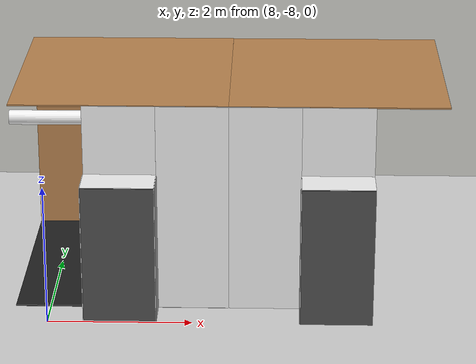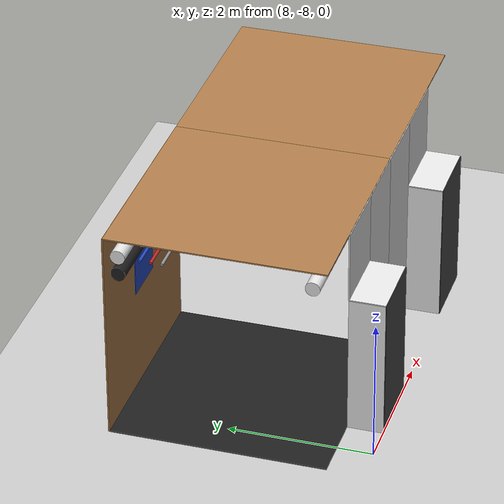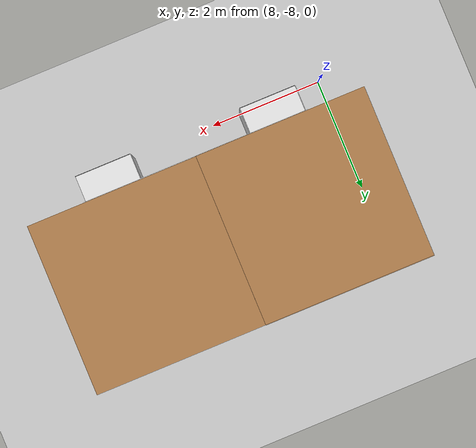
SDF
<sdf version="1.6">
 <world name="default">
  <model name="ground_plane">
   <static>1</static>
   <link name="link">
    <collision name="collision">
     <geometry><plane><normal>0 0 1</normal><size>200 200</size></plane></geometry>
     <surface><friction><ode><mu>100</mu><mu2>50</mu2></ode></friction></surface>
    </collision>
    <visual name="visual">
     <cast_shadows>0</cast_shadows>
     <geometry><plane><normal>0 0 1</normal><size>200 200</size></plane></geometry>
     <material>
      <script><uri>file://media/materials/scripts/gazebo.material</uri><name>Gazebo/Grey</name></script>
     </material>
    </visual>
   </link>
  </model>
  <model name="panel_3_-2_0_1">
   <static>1</static>
   <pose>9.0 -4.5 1.95 0.0 0.0 1.57</pose>
   <link name="link">
    <collision name="collision"><geometry><box><size>0.04 0.7 1</size></box></geometry></collision>
    <visual name="visual">
     <material>
      <script><name>Gazebo/Blue</name><uri>file://media/materials/scripts/gazebo.material</uri></script>
     </material>
     <geometry><box><size>0.04 0.7 1</size></box></geometry>
    </visual>
   </link>
  </model>
  <model name="wall_top_4_-2_0_1">
   <static>1</static>
   <pose>12.0 -6.0 3.0 1.57 0.0 1.57</pose>
   <link name="link">
    <collision name="collision"><geometry><box><size>3 0.02 3</size></box></geometry></collision>
    <visual name="visual">
     <material>
      <script><name>Gazebo/Wood</name><uri>file://media/materials/scripts/gazebo.material</uri></script>
     </material>
     <geometry><box><size>3 0.02 3</size></box></geometry>
    </visual>
   </link>
  </model>
  <model name="wall_left_front_left_4_-2_0_1">
   <static>1</static>
   <pose>11.0 -7.5 1.5 0.0 0.0 3.14</pose>
   <link name="link">
    <collision name="collision"><geometry><box><size>1.0 0.02 3</size></box></geometry></collision>
    <visual name="visual">
     <material>
      <script><name>Gazebo/White</name><uri>file://media/materials/scripts/gazebo.material</uri></script>
     </material>
     <geometry><box><size>1.0 0.02 3</size></box></geometry>
    </visual>
   </link>
  </model>
  <model name="wall_left_front_up_4_-2_0_1">
   <static>1</static>
   <pose>12.0 -7.5 2.5 0.0 0.0 3.14</pose>
   <link name="link">
    <collision name="collision"><geometry><box><size>1.0 0.02 1</size></box></geometry></collision>
    <visual name="visual">
     <material>
      <script><name>Gazebo/White</name><uri>file://media/materials/scripts/gazebo.material</uri></script>
     </material>
     <geometry><box><size>1.0 0.02 1</size></box></geometry>
    </visual>
   </link>
  </model>
  <model name="wall_left_inside_back_4_-2_0_1">
   <static>1</static>
   <pose>12.0 -8.0 1.0 0.0 0.0 3.14</pose>
   <link name="link">
    <collision name="collision"><geometry><box><size>1 0.02 2</size></box></geometry></collision>
    <visual name="visual">
     <material>
      <script><name>Gazebo/DarkGrey</name><uri>file://media/materials/scripts/gazebo.material</uri></script>
     </material>
     <geometry><box><size>1 0.02 2</size></box></geometry>
    </visual>
   </link>
  </model>
  <model name="wall_left_inside_left_4_-2_0_1">
   <static>1</static>
   <pose>11.5 -7.75 1.0 0.0 0.0 1.57</pose>
   <link name="link">
    <collision name="collision"><geometry><box><size>0.5 0.02 2</size></box></geometry></collision>
    <visual name="visual">
     <material>
      <script><name>Gazebo/White</name><uri>file://media/materials/scripts/gazebo.material</uri></script>
     </material>
     <geometry><box><size>0.5 0.02 2</size></box></geometry>
    </visual>
   </link>
  </model>
  <model name="wall_left_inside_top_4_-2_0_1">
   <static>1</static>
   <pose>12.0 -7.75 2.0 1.57 0.0 3.14</pose>
   <link name="link">
    <collision name="collision"><geometry><box><size>1 0.02 0.5</size></box></geometry></collision>
    <visual name="visual">
     <material>
      <script><name>Gazebo/White</name><uri>file://media/materials/scripts/gazebo.material</uri></script>
     </material>
     <geometry><box><size>1 0.02 0.5</size></box></geometry>
    </visual>
   </link>
  </model>
  <model name="wall_right_3_-2_0_1">
   <static>1</static>
   <pose>9.0 -4.5 1.5 0.0 0.0 3.14</pose>
   <link name="link">
    <collision name="collision"><geometry><box><size>3 0.02 3</size></box></geometry></collision>
    <visual name="visual">
     <material>
      <script><name>Gazebo/Wood</name><uri>file://media/materials/scripts/gazebo.material</uri></script>
     </material>
     <geometry><box><size>3 0.02 3</size></box></geometry>
    </visual>
   </link>
  </model>
  <model name="wall_top_3_-2_0_1">
   <static>1</static>
   <pose>9.0 -6.0 3.0 1.57 0.0 1.57</pose>
   <link name="link">
    <collision name="collision"><geometry><box><size>3 0.02 3</size></box></geometry></collision>
    <visual name="visual">
     <material>
      <script><name>Gazebo/Wood</name><uri>file://media/materials/scripts/gazebo.material</uri></script>
     </material>
     <geometry><box><size>3 0.02 3</size></box></geometry>
    </visual>
   </link>
  </model>
  <model name="white_pipe_left_3_-2_0_1">
   <static>1</static>
   <pose>9.0 -6.0 2.76 0.0 0.0 1.57</pose>
   <link name="link_0">
    <visual name="visual">
     <pose>-1.3 0 0 1.57 0 0</pose>
     <geometry><cylinder><radius>0.1</radius><length>3</length></cylinder></geometry>
     <material>
      <script><uri>file://media/materials/scripts/gazebo.material</uri><name>Gazebo/White</name></script>
     </material>
    </visual>
    <collision name="collision">
     <pose>-1.3 0 0 1.57 0 0</pose>
     <geometry><cylinder><radius>0.1</radius><length>3</length></cylinder></geometry>
    </collision>
   </link>
  </model>
  <model name="white_pipe_right_3_-2_0_1">
   <static>1</static>
   <pose>9.0 -6.0 2.76 0.0 0.0 1.57</pose>
   <link name="link_0">
    <visual name="visual">
     <pose>1.3 0 0 1.57 0 0</pose>
     <geometry><cylinder><radius>0.1</radius><length>3</length></cylinder></geometry>
     <material>
      <script><uri>file://media/materials/scripts/gazebo.material</uri><name>Gazebo/White</name></script>
     </material>
    </visual>
    <collision name="collision">
     <pose>1.3 0 0 1.57 0 0</pose>
     <geometry><cylinder><radius>0.1</radius><length>3</length></cylinder></geometry>
    </collision>
   </link>
  </model>
  <model name="black_pipe_right_3_-2_0_1">
   <static>1</static>
   <pose>9.0 -6.0 2.76 0.0 0.0 1.57</pose>
   <link name="link_0">
    <visual name="visual">
     <pose>1.3 0 -0.25 1.57 0 0</pose>
     <geometry><cylinder><radius>0.1</radius><length>3</length></cylinder></geometry>
     <material>
      <script><uri>file://media/materials/scripts/gazebo.material</uri><name>Gazebo/Black</name></script>
     </material>
    </visual>
    <collision name="collision">
     <pose>1.3 0 -0.25 1.57 0 0</pose>
     <geometry><cylinder><radius>0.1</radius><length>3</length></cylinder></geometry>
    </collision>
   </link>
  </model>
  <model name="grey_pipe_right_3_-2_0_1">
   <static>1</static>
   <pose>9.0 -6.0 2.76 0.0 0.0 1.57</pose>
   <link name="link_0">
    <visual name="visual">
     <pose>0.7 0 0 1.57 0 0</pose>
     <geometry><cylinder><radius>0.02</radius><length>3</length></cylinder></geometry>
     <material>
      <script><uri>file://media/materials/scripts/gazebo.material</uri><name>Gazebo/Grey</name></script>
     </material>
    </visual>
    <collision name="collision">
     <pose>0.7 0 0 1.57 0 0</pose>
     <geometry><cylinder><radius>0.02</radius><length>3</length></cylinder></geometry>
    </collision>
   </link>
  </model>
  <model name="red_pipe_right_3_-2_0_1">
   <static>1</static>
   <pose>9.0 -6.0 2.76 0.0 0.0 1.57</pose>
   <link name="link_0">
    <visual name="visual">
     <pose>0.85 0 0 1.57 0 0</pose>
     <geometry><cylinder><radius>0.02</radius><length>3</length></cylinder></geometry>
     <material>
      <script><uri>file://media/materials/scripts/gazebo.material</uri><name>Gazebo/Red</name></script>
     </material>
    </visual>
    <collision name="collision">
     <pose>0.85 0 0 1.57 0 0</pose>
     <geometry><cylinder><radius>0.02</radius><length>3</length></cylinder></geometry>
    </collision>
   </link>
  </model>
  <model name="blue_pipe_right_3_-2_0_1">
   <static>1</static>
   <pose>9.0 -6.0 2.76 0.0 0.0 1.57</pose>
   <link name="link_0">
    <visual name="visual">
     <pose>1 0 0 1.57 0 0</pose>
     <geometry><cylinder><radius>0.02</radius><length>3</length></cylinder></geometry>
     <material>
      <script><uri>file://media/materials/scripts/gazebo.material</uri><name>Gazebo/Blue</name></script>
     </material>
    </visual>
    <collision name="collision">
     <pose>1 0 0 1.57 0 0</pose>
     <geometry><cylinder><radius>0.02</radius><length>3</length></cylinder></geometry>
    </collision>
   </link>
  </model>
  <model name="wall_bottom_3_-2_0_1">
   <static>1</static>
   <pose>9.0 -6.0 0.0 0.0 0.0 1.57</pose>
   <link name="link">
    <collision name="collision"><geometry><box><size>3 3 0.02</size></box></geometry></collision>
    <visual name="visual">
     <material>
      <script><name>Gazebo/Black</name><uri>file://media/materials/scripts/gazebo.material</uri></script>
     </material>
     <geometry><box><size>3 3 0.02</size></box></geometry>
    </visual>
   </link>
  </model>
  <model name="wall_left_front_right_3_-2_0_1">
   <static>1</static>
   <pose>10.0 -7.5 1.5 0.0 0.0 3.14</pose>
   <link name="link">
    <collision name="collision"><geometry><box><size>1.0 0.02 3</size></box></geometry></collision>
    <visual name="visual">
     <material>
      <script><name>Gazebo/White</name><uri>file://media/materials/scripts/gazebo.material</uri></script>
     </material>
     <geometry><box><size>1.0 0.02 3</size></box></geometry>
    </visual>
   </link>
  </model>
  <model name="wall_left_front_up_3_-2_0_1">
   <static>1</static>
   <pose>9.0 -7.5 2.5 0.0 0.0 3.14</pose>
   <link name="link">
    <collision name="collision"><geometry><box><size>1.0 0.02 1</size></box></geometry></collision>
    <visual name="visual">
     <material>
      <script><name>Gazebo/White</name><uri>file://media/materials/scripts/gazebo.material</uri></script>
     </material>
     <geometry><box><size>1.0 0.02 1</size></box></geometry>
    </visual>
   </link>
  </model>
  <model name="wall_left_inside_back_3_-2_0_1">
   <static>1</static>
   <pose>9.0 -8.0 1.0 0.0 0.0 3.14</pose>
   <link name="link">
    <collision name="collision"><geometry><box><size>1 0.02 2</size></box></geometry></collision>
    <visual name="visual">
     <material>
      <script><name>Gazebo/DarkGrey</name><uri>file://media/materials/scripts/gazebo.material</uri></script>
     </material>
     <geometry><box><size>1 0.02 2</size></box></geometry>
    </visual>
   </link>
  </model>
  <model name="wall_left_inside_left_3_-2_0_1">
   <static>1</static>
   <pose>8.5 -7.75 1.0 0.0 0.0 1.57</pose>
   <link name="link">
    <collision name="collision"><geometry><box><size>0.5 0.02 2</size></box></geometry></collision>
    <visual name="visual">
     <material>
      <script><name>Gazebo/White</name><uri>file://media/materials/scripts/gazebo.material</uri></script>
     </material>
     <geometry><box><size>0.5 0.02 2</size></box></geometry>
    </visual>
   </link>
  </model>
  <model name="wall_left_inside_right_3_-2_0_1">
   <static>1</static>
   <pose>9.5 -7.75 1.0 0.0 0.0 1.57</pose>
   <link name="link">
    <collision name="collision"><geometry><box><size>0.5 0.02 2</size></box></geometry></collision>
    <visual name="visual">
     <material>
      <script><name>Gazebo/White</name><uri>file://media/materials/scripts/gazebo.material</uri></script>
     </material>
     <geometry><box><size>0.5 0.02 2</size></box></geometry>
    </visual>
   </link>
  </model>
  <model name="wall_left_inside_top_3_-2_0_1">
   <static>1</static>
   <pose>9.0 -7.75 2.0 1.57 0.0 3.14</pose>
   <link name="link">
    <collision name="collision"><geometry><box><size>1 0.02 0.5</size></box></geometry></collision>
    <visual name="visual">
     <material>
      <script><name>Gazebo/White</name><uri>file://media/materials/scripts/gazebo.material</uri></script>
     </material>
     <geometry><box><size>1 0.02 0.5</size></box></geometry>
    </visual>
   </link>
  </model>
 </world>
</sdf>
